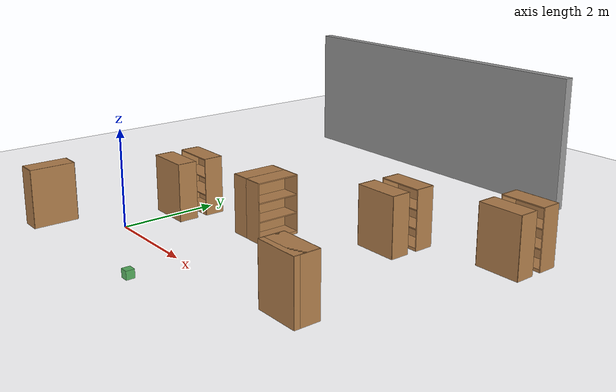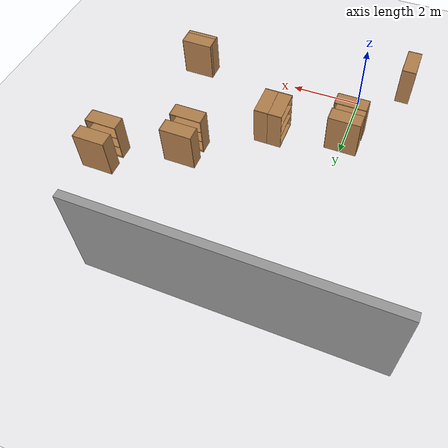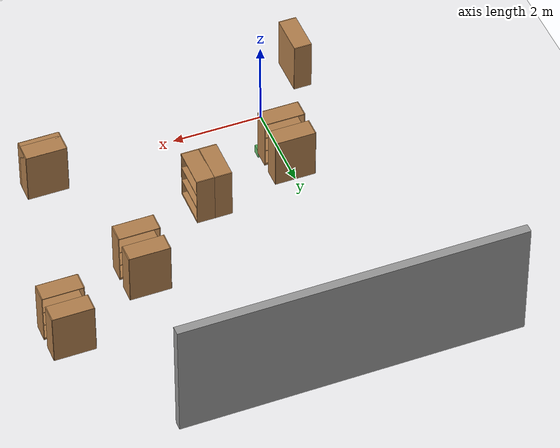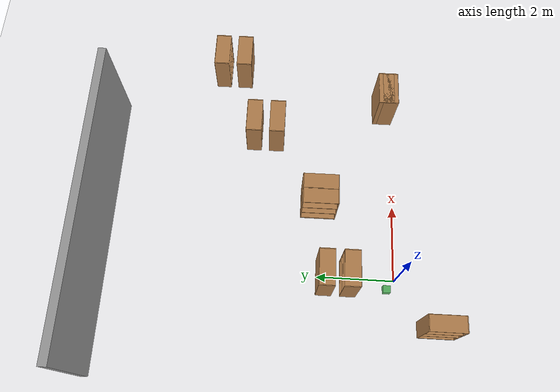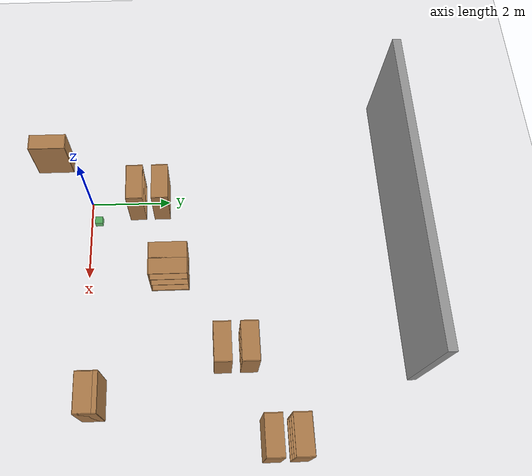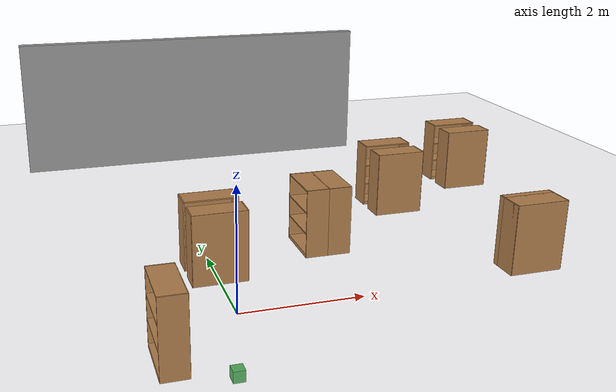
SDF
<sdf version="1.4">
 <world name="default">
  <include><uri>model://sun</uri></include>
  <include><uri>model://ground_plane</uri></include>
  <model name="rat_goal">
   <static>1</static>
   <link name="rat_goal_link">
    <visual name="visual">
     <geometry><box><size>0.2 0.2 0.2</size></box></geometry>
     <material>
      <script><uri>file://media/materials/scripts/gazebo.material</uri><name>Gazebo/Green</name></script>
     </material>
    </visual>
    <gravity>0</gravity>
   </link>
   <pose>0 0 -1 0 0 0</pose>
  </model>
  <model name="bookshelf_1">
   <static>1</static>
   <link name="link">
    <inertial><mass>1</mass></inertial>
    <collision name="back">
     <pose>0 0.005 0.6 0 -0 0</pose>
     <geometry><box><size>0.9 0.01 1.2</size></box></geometry>
    </collision>
    <visual name="visual1">
     <pose>0 0.005 0.6 0 -0 0</pose>
     <geometry><box><size>0.9 0.01 1.2</size></box></geometry>
     <material>
      <script><uri>file://media/materials/scripts/gazebo.material</uri><name>Gazebo/Wood</name></script>
     </material>
    </visual>
    <collision name="left_side">
     <pose>0.45 -0.195 0.6 0 -0 0</pose>
     <geometry><box><size>0.02 0.4 1.2</size></box></geometry>
    </collision>
    <visual name="visual2">
     <pose>0.45 -0.195 0.6 0 -0 0</pose>
     <geometry><box><size>0.02 0.4 1.2</size></box></geometry>
     <material>
      <script><uri>file://media/materials/scripts/gazebo.material</uri><name>Gazebo/Wood</name></script>
     </material>
    </visual>
    <collision name="right_side">
     <pose>-0.45 -0.195 0.6 0 -0 0</pose>
     <geometry><box><size>0.02 0.4 1.2</size></box></geometry>
    </collision>
    <visual name="visual3">
     <pose>-0.45 -0.195 0.6 0 -0 0</pose>
     <geometry><box><size>0.02 0.4 1.2</size></box></geometry>
     <material>
      <script><uri>file://media/materials/scripts/gazebo.material</uri><name>Gazebo/Wood</name></script>
     </material>
    </visual>
    <collision name="bottom">
     <pose>0 -0.195 0.03 0 -0 0</pose>
     <geometry><box><size>0.88 0.4 0.06</size></box></geometry>
    </collision>
    <visual name="visual4">
     <pose>0 -0.195 0.03 0 -0 0</pose>
     <geometry><box><size>0.88 0.4 0.06</size></box></geometry>
     <material>
      <script><uri>file://media/materials/scripts/gazebo.material</uri><name>Gazebo/Wood</name></script>
     </material>
    </visual>
    <collision name="top">
     <pose>0 -0.195 1.19 0 -0 0</pose>
     <geometry><box><size>0.88 0.4 0.02</size></box></geometry>
    </collision>
    <visual name="visual5">
     <pose>0 -0.195 1.19 0 -0 0</pose>
     <geometry><box><size>0.88 0.4 0.02</size></box></geometry>
     <material>
      <script><uri>file://media/materials/scripts/gazebo.material</uri><name>Gazebo/Wood</name></script>
     </material>
    </visual>
    <collision name="low_shelf">
     <pose>0 -0.195 0.43 0 -0 0</pose>
     <geometry><box><size>0.88 0.4 0.02</size></box></geometry>
    </collision>
    <visual name="visual6">
     <pose>0 -0.195 0.43 0 -0 0</pose>
     <geometry><box><size>0.88 0.4 0.02</size></box></geometry>
     <material>
      <script><uri>file://media/materials/scripts/gazebo.material</uri><name>Gazebo/Wood</name></script>
     </material>
    </visual>
    <collision name="high_shelf">
     <pose>0 -0.195 0.8 0 -0 0</pose>
     <geometry><box><size>0.88 0.4 0.02</size></box></geometry>
    </collision>
    <visual name="visual7">
     <pose>0 -0.195 0.8 0 -0 0</pose>
     <geometry><box><size>0.88 0.4 0.02</size></box></geometry>
     <material>
      <script><uri>file://media/materials/scripts/gazebo.material</uri><name>Gazebo/Wood</name></script>
     </material>
    </visual>
    <velocity_decay><linear>0</linear><angular>0</angular></velocity_decay>
   </link>
   <pose>0 2 0 0 -0 0</pose>
  </model>
  <model name="bookshelf_3">
   <static>1</static>
   <link name="link">
    <inertial><mass>1</mass></inertial>
    <collision name="back">
     <pose>0 0.005 0.6 0 -0 0</pose>
     <geometry><box><size>0.9 0.01 1.2</size></box></geometry>
    </collision>
    <visual name="visual1">
     <pose>0 0.005 0.6 0 -0 0</pose>
     <geometry><box><size>0.9 0.01 1.2</size></box></geometry>
     <material>
      <script><uri>file://media/materials/scripts/gazebo.material</uri><name>Gazebo/Wood</name></script>
     </material>
    </visual>
    <collision name="left_side">
     <pose>0.45 -0.195 0.6 0 -0 0</pose>
     <geometry><box><size>0.02 0.4 1.2</size></box></geometry>
    </collision>
    <visual name="visual2">
     <pose>0.45 -0.195 0.6 0 -0 0</pose>
     <geometry><box><size>0.02 0.4 1.2</size></box></geometry>
     <material>
      <script><uri>file://media/materials/scripts/gazebo.material</uri><name>Gazebo/Wood</name></script>
     </material>
    </visual>
    <collision name="right_side">
     <pose>-0.45 -0.195 0.6 0 -0 0</pose>
     <geometry><box><size>0.02 0.4 1.2</size></box></geometry>
    </collision>
    <visual name="visual3">
     <pose>-0.45 -0.195 0.6 0 -0 0</pose>
     <geometry><box><size>0.02 0.4 1.2</size></box></geometry>
     <material>
      <script><uri>file://media/materials/scripts/gazebo.material</uri><name>Gazebo/Wood</name></script>
     </material>
    </visual>
    <collision name="bottom">
     <pose>0 -0.195 0.03 0 -0 0</pose>
     <geometry><box><size>0.88 0.4 0.06</size></box></geometry>
    </collision>
    <visual name="visual4">
     <pose>0 -0.195 0.03 0 -0 0</pose>
     <geometry><box><size>0.88 0.4 0.06</size></box></geometry>
     <material>
      <script><uri>file://media/materials/scripts/gazebo.material</uri><name>Gazebo/Wood</name></script>
     </material>
    </visual>
    <collision name="top">
     <pose>0 -0.195 1.19 0 -0 0</pose>
     <geometry><box><size>0.88 0.4 0.02</size></box></geometry>
    </collision>
    <visual name="visual5">
     <pose>0 -0.195 1.19 0 -0 0</pose>
     <geometry><box><size>0.88 0.4 0.02</size></box></geometry>
     <material>
      <script><uri>file://media/materials/scripts/gazebo.material</uri><name>Gazebo/Wood</name></script>
     </material>
    </visual>
    <collision name="low_shelf">
     <pose>0 -0.195 0.43 0 -0 0</pose>
     <geometry><box><size>0.88 0.4 0.02</size></box></geometry>
    </collision>
    <visual name="visual6">
     <pose>0 -0.195 0.43 0 -0 0</pose>
     <geometry><box><size>0.88 0.4 0.02</size></box></geometry>
     <material>
      <script><uri>file://media/materials/scripts/gazebo.material</uri><name>Gazebo/Wood</name></script>
     </material>
    </visual>
    <collision name="high_shelf">
     <pose>0 -0.195 0.8 0 -0 0</pose>
     <geometry><box><size>0.88 0.4 0.02</size></box></geometry>
    </collision>
    <visual name="visual7">
     <pose>0 -0.195 0.8 0 -0 0</pose>
     <geometry><box><size>0.88 0.4 0.02</size></box></geometry>
     <material>
      <script><uri>file://media/materials/scripts/gazebo.material</uri><name>Gazebo/Wood</name></script>
     </material>
    </visual>
    <velocity_decay><linear>0</linear><angular>0</angular></velocity_decay>
   </link>
   <pose>0 1 0 0 0 -3.14159</pose>
  </model>
  <model name="grey_wall">
   <static>1</static>
   <link name="link">
    <pose>0 0 1.4 0 -0 0</pose>
    <collision name="collision"><geometry><box><size>7.5 0.2 2.8</size></box></geometry></collision>
    <visual name="visual">
     <cast_shadows>0</cast_shadows>
     <geometry><box><size>7.5 0.2 2.8</size></box></geometry>
     <material>
      <script>
       <uri>model://grey_wall/materials/scripts</uri>
       <uri>model://grey_wall/materials/textures</uri>
       <name>vrc/grey_wall</name>
      </script>
     </material>
    </visual>
    <velocity_decay><linear>0</linear><angular>0</angular></velocity_decay>
   </link>
   <pose>1 7.54791 0 0 -0 0</pose>
  </model>
  <model name="bookshelf_5">
   <static>1</static>
   <link name="link">
    <inertial><mass>1</mass></inertial>
    <collision name="back">
     <pose>0 0.005 0.6 0 -0 0</pose>
     <geometry><box><size>0.9 0.01 1.2</size></box></geometry>
    </collision>
    <visual name="visual1">
     <pose>0 0.005 0.6 0 -0 0</pose>
     <geometry><box><size>0.9 0.01 1.2</size></box></geometry>
     <material>
      <script><uri>file://media/materials/scripts/gazebo.material</uri><name>Gazebo/Wood</name></script>
     </material>
    </visual>
    <collision name="left_side">
     <pose>0.45 -0.195 0.6 0 -0 0</pose>
     <geometry><box><size>0.02 0.4 1.2</size></box></geometry>
    </collision>
    <visual name="visual2">
     <pose>0.45 -0.195 0.6 0 -0 0</pose>
     <geometry><box><size>0.02 0.4 1.2</size></box></geometry>
     <material>
      <script><uri>file://media/materials/scripts/gazebo.material</uri><name>Gazebo/Wood</name></script>
     </material>
    </visual>
    <collision name="right_side">
     <pose>-0.45 -0.195 0.6 0 -0 0</pose>
     <geometry><box><size>0.02 0.4 1.2</size></box></geometry>
    </collision>
    <visual name="visual3">
     <pose>-0.45 -0.195 0.6 0 -0 0</pose>
     <geometry><box><size>0.02 0.4 1.2</size></box></geometry>
     <material>
      <script><uri>file://media/materials/scripts/gazebo.material</uri><name>Gazebo/Wood</name></script>
     </material>
    </visual>
    <collision name="bottom">
     <pose>0 -0.195 0.03 0 -0 0</pose>
     <geometry><box><size>0.88 0.4 0.06</size></box></geometry>
    </collision>
    <visual name="visual4">
     <pose>0 -0.195 0.03 0 -0 0</pose>
     <geometry><box><size>0.88 0.4 0.06</size></box></geometry>
     <material>
      <script><uri>file://media/materials/scripts/gazebo.material</uri><name>Gazebo/Wood</name></script>
     </material>
    </visual>
    <collision name="top">
     <pose>0 -0.195 1.19 0 -0 0</pose>
     <geometry><box><size>0.88 0.4 0.02</size></box></geometry>
    </collision>
    <visual name="visual5">
     <pose>0 -0.195 1.19 0 -0 0</pose>
     <geometry><box><size>0.88 0.4 0.02</size></box></geometry>
     <material>
      <script><uri>file://media/materials/scripts/gazebo.material</uri><name>Gazebo/Wood</name></script>
     </material>
    </visual>
    <collision name="low_shelf">
     <pose>0 -0.195 0.43 0 -0 0</pose>
     <geometry><box><size>0.88 0.4 0.02</size></box></geometry>
    </collision>
    <visual name="visual6">
     <pose>0 -0.195 0.43 0 -0 0</pose>
     <geometry><box><size>0.88 0.4 0.02</size></box></geometry>
     <material>
      <script><uri>file://media/materials/scripts/gazebo.material</uri><name>Gazebo/Wood</name></script>
     </material>
    </visual>
    <collision name="high_shelf">
     <pose>0 -0.195 0.8 0 -0 0</pose>
     <geometry><box><size>0.88 0.4 0.02</size></box></geometry>
    </collision>
    <visual name="visual7">
     <pose>0 -0.195 0.8 0 -0 0</pose>
     <geometry><box><size>0.88 0.4 0.02</size></box></geometry>
     <material>
      <script><uri>file://media/materials/scripts/gazebo.material</uri><name>Gazebo/Wood</name></script>
     </material>
    </visual>
    <velocity_decay><linear>0</linear><angular>0</angular></velocity_decay>
   </link>
   <pose>6 5 0 0 -0 0</pose>
  </model>
  <model name="bookshelf_7">
   <static>1</static>
   <link name="link">
    <inertial><mass>1</mass></inertial>
    <collision name="back">
     <pose>0 0.005 0.6 0 -0 0</pose>
     <geometry><box><size>0.9 0.01 1.2</size></box></geometry>
    </collision>
    <visual name="visual1">
     <pose>0 0.005 0.6 0 -0 0</pose>
     <geometry><box><size>0.9 0.01 1.2</size></box></geometry>
     <material>
      <script><uri>file://media/materials/scripts/gazebo.material</uri><name>Gazebo/Wood</name></script>
     </material>
    </visual>
    <collision name="left_side">
     <pose>0.45 -0.195 0.6 0 -0 0</pose>
     <geometry><box><size>0.02 0.4 1.2</size></box></geometry>
    </collision>
    <visual name="visual2">
     <pose>0.45 -0.195 0.6 0 -0 0</pose>
     <geometry><box><size>0.02 0.4 1.2</size></box></geometry>
     <material>
      <script><uri>file://media/materials/scripts/gazebo.material</uri><name>Gazebo/Wood</name></script>
     </material>
    </visual>
    <collision name="right_side">
     <pose>-0.45 -0.195 0.6 0 -0 0</pose>
     <geometry><box><size>0.02 0.4 1.2</size></box></geometry>
    </collision>
    <visual name="visual3">
     <pose>-0.45 -0.195 0.6 0 -0 0</pose>
     <geometry><box><size>0.02 0.4 1.2</size></box></geometry>
     <material>
      <script><uri>file://media/materials/scripts/gazebo.material</uri><name>Gazebo/Wood</name></script>
     </material>
    </visual>
    <collision name="bottom">
     <pose>0 -0.195 0.03 0 -0 0</pose>
     <geometry><box><size>0.88 0.4 0.06</size></box></geometry>
    </collision>
    <visual name="visual4">
     <pose>0 -0.195 0.03 0 -0 0</pose>
     <geometry><box><size>0.88 0.4 0.06</size></box></geometry>
     <material>
      <script><uri>file://media/materials/scripts/gazebo.material</uri><name>Gazebo/Wood</name></script>
     </material>
    </visual>
    <collision name="top">
     <pose>0 -0.195 1.19 0 -0 0</pose>
     <geometry><box><size>0.88 0.4 0.02</size></box></geometry>
    </collision>
    <visual name="visual5">
     <pose>0 -0.195 1.19 0 -0 0</pose>
     <geometry><box><size>0.88 0.4 0.02</size></box></geometry>
     <material>
      <script><uri>file://media/materials/scripts/gazebo.material</uri><name>Gazebo/Wood</name></script>
     </material>
    </visual>
    <collision name="low_shelf">
     <pose>0 -0.195 0.43 0 -0 0</pose>
     <geometry><box><size>0.88 0.4 0.02</size></box></geometry>
    </collision>
    <visual name="visual6">
     <pose>0 -0.195 0.43 0 -0 0</pose>
     <geometry><box><size>0.88 0.4 0.02</size></box></geometry>
     <material>
      <script><uri>file://media/materials/scripts/gazebo.material</uri><name>Gazebo/Wood</name></script>
     </material>
    </visual>
    <collision name="high_shelf">
     <pose>0 -0.195 0.8 0 -0 0</pose>
     <geometry><box><size>0.88 0.4 0.02</size></box></geometry>
    </collision>
    <visual name="visual7">
     <pose>0 -0.195 0.8 0 -0 0</pose>
     <geometry><box><size>0.88 0.4 0.02</size></box></geometry>
     <material>
      <script><uri>file://media/materials/scripts/gazebo.material</uri><name>Gazebo/Wood</name></script>
     </material>
    </visual>
    <velocity_decay><linear>0</linear><angular>0</angular></velocity_decay>
   </link>
   <pose>6 4 0 0 0 -3.14159</pose>
  </model>
  <model name="bookshelf_11">
   <static>1</static>
   <link name="link">
    <inertial><mass>1</mass></inertial>
    <collision name="back">
     <pose>0 0.005 0.6 0 -0 0</pose>
     <geometry><box><size>0.9 0.01 1.2</size></box></geometry>
    </collision>
    <visual name="visual1">
     <pose>0 0.005 0.6 0 -0 0</pose>
     <geometry><box><size>0.9 0.01 1.2</size></box></geometry>
     <material>
      <script><uri>file://media/materials/scripts/gazebo.material</uri><name>Gazebo/Wood</name></script>
     </material>
    </visual>
    <collision name="left_side">
     <pose>0.45 -0.195 0.6 0 -0 0</pose>
     <geometry><box><size>0.02 0.4 1.2</size></box></geometry>
    </collision>
    <visual name="visual2">
     <pose>0.45 -0.195 0.6 0 -0 0</pose>
     <geometry><box><size>0.02 0.4 1.2</size></box></geometry>
     <material>
      <script><uri>file://media/materials/scripts/gazebo.material</uri><name>Gazebo/Wood</name></script>
     </material>
    </visual>
    <collision name="right_side">
     <pose>-0.45 -0.195 0.6 0 -0 0</pose>
     <geometry><box><size>0.02 0.4 1.2</size></box></geometry>
    </collision>
    <visual name="visual3">
     <pose>-0.45 -0.195 0.6 0 -0 0</pose>
     <geometry><box><size>0.02 0.4 1.2</size></box></geometry>
     <material>
      <script><uri>file://media/materials/scripts/gazebo.material</uri><name>Gazebo/Wood</name></script>
     </material>
    </visual>
    <collision name="bottom">
     <pose>0 -0.195 0.03 0 -0 0</pose>
     <geometry><box><size>0.88 0.4 0.06</size></box></geometry>
    </collision>
    <visual name="visual4">
     <pose>0 -0.195 0.03 0 -0 0</pose>
     <geometry><box><size>0.88 0.4 0.06</size></box></geometry>
     <material>
      <script><uri>file://media/materials/scripts/gazebo.material</uri><name>Gazebo/Wood</name></script>
     </material>
    </visual>
    <collision name="top">
     <pose>0 -0.195 1.19 0 -0 0</pose>
     <geometry><box><size>0.88 0.4 0.02</size></box></geometry>
    </collision>
    <visual name="visual5">
     <pose>0 -0.195 1.19 0 -0 0</pose>
     <geometry><box><size>0.88 0.4 0.02</size></box></geometry>
     <material>
      <script><uri>file://media/materials/scripts/gazebo.material</uri><name>Gazebo/Wood</name></script>
     </material>
    </visual>
    <collision name="low_shelf">
     <pose>0 -0.195 0.43 0 -0 0</pose>
     <geometry><box><size>0.88 0.4 0.02</size></box></geometry>
    </collision>
    <visual name="visual6">
     <pose>0 -0.195 0.43 0 -0 0</pose>
     <geometry><box><size>0.88 0.4 0.02</size></box></geometry>
     <material>
      <script><uri>file://media/materials/scripts/gazebo.material</uri><name>Gazebo/Wood</name></script>
     </material>
    </visual>
    <collision name="high_shelf">
     <pose>0 -0.195 0.8 0 -0 0</pose>
     <geometry><box><size>0.88 0.4 0.02</size></box></geometry>
    </collision>
    <visual name="visual7">
     <pose>0 -0.195 0.8 0 -0 0</pose>
     <geometry><box><size>0.88 0.4 0.02</size></box></geometry>
     <material>
      <script><uri>file://media/materials/scripts/gazebo.material</uri><name>Gazebo/Wood</name></script>
     </material>
    </visual>
    <velocity_decay><linear>0</linear><angular>0</angular></velocity_decay>
   </link>
   <pose>-1 -1 0 0 0 -1.5708</pose>
  </model>
  <model name="bookshelf_12">
   <static>1</static>
   <link name="link">
    <inertial><mass>1</mass></inertial>
    <collision name="back">
     <pose>0 0.005 0.6 0 -0 0</pose>
     <geometry><box><size>0.9 0.01 1.2</size></box></geometry>
    </collision>
    <visual name="visual1">
     <pose>0 0.005 0.6 0 -0 0</pose>
     <geometry><box><size>0.9 0.01 1.2</size></box></geometry>
     <material>
      <script><uri>file://media/materials/scripts/gazebo.material</uri><name>Gazebo/Wood</name></script>
     </material>
    </visual>
    <collision name="left_side">
     <pose>0.45 -0.195 0.6 0 -0 0</pose>
     <geometry><box><size>0.02 0.4 1.2</size></box></geometry>
    </collision>
    <visual name="visual2">
     <pose>0.45 -0.195 0.6 0 -0 0</pose>
     <geometry><box><size>0.02 0.4 1.2</size></box></geometry>
     <material>
      <script><uri>file://media/materials/scripts/gazebo.material</uri><name>Gazebo/Wood</name></script>
     </material>
    </visual>
    <collision name="right_side">
     <pose>-0.45 -0.195 0.6 0 -0 0</pose>
     <geometry><box><size>0.02 0.4 1.2</size></box></geometry>
    </collision>
    <visual name="visual3">
     <pose>-0.45 -0.195 0.6 0 -0 0</pose>
     <geometry><box><size>0.02 0.4 1.2</size></box></geometry>
     <material>
      <script><uri>file://media/materials/scripts/gazebo.material</uri><name>Gazebo/Wood</name></script>
     </material>
    </visual>
    <collision name="bottom">
     <pose>0 -0.195 0.03 0 -0 0</pose>
     <geometry><box><size>0.88 0.4 0.06</size></box></geometry>
    </collision>
    <visual name="visual4">
     <pose>0 -0.195 0.03 0 -0 0</pose>
     <geometry><box><size>0.88 0.4 0.06</size></box></geometry>
     <material>
      <script><uri>file://media/materials/scripts/gazebo.material</uri><name>Gazebo/Wood</name></script>
     </material>
    </visual>
    <collision name="top">
     <pose>0 -0.195 1.19 0 -0 0</pose>
     <geometry><box><size>0.88 0.4 0.02</size></box></geometry>
    </collision>
    <visual name="visual5">
     <pose>0 -0.195 1.19 0 -0 0</pose>
     <geometry><box><size>0.88 0.4 0.02</size></box></geometry>
     <material>
      <script><uri>file://media/materials/scripts/gazebo.material</uri><name>Gazebo/Wood</name></script>
     </material>
    </visual>
    <collision name="low_shelf">
     <pose>0 -0.195 0.43 0 -0 0</pose>
     <geometry><box><size>0.88 0.4 0.02</size></box></geometry>
    </collision>
    <visual name="visual6">
     <pose>0 -0.195 0.43 0 -0 0</pose>
     <geometry><box><size>0.88 0.4 0.02</size></box></geometry>
     <material>
      <script><uri>file://media/materials/scripts/gazebo.material</uri><name>Gazebo/Wood</name></script>
     </material>
    </visual>
    <collision name="high_shelf">
     <pose>0 -0.195 0.8 0 -0 0</pose>
     <geometry><box><size>0.88 0.4 0.02</size></box></geometry>
    </collision>
    <visual name="visual7">
     <pose>0 -0.195 0.8 0 -0 0</pose>
     <geometry><box><size>0.88 0.4 0.02</size></box></geometry>
     <material>
      <script><uri>file://media/materials/scripts/gazebo.material</uri><name>Gazebo/Wood</name></script>
     </material>
    </visual>
    <velocity_decay><linear>0</linear><angular>0</angular></velocity_decay>
   </link>
   <pose>4 4 0 0 -0 0</pose>
  </model>
  <model name="bookshelf_13">
   <static>1</static>
   <link name="link">
    <inertial><mass>1</mass></inertial>
    <collision name="back">
     <pose>0 0.005 0.6 0 -0 0</pose>
     <geometry><box><size>0.9 0.01 1.2</size></box></geometry>
    </collision>
    <visual name="visual1">
     <pose>0 0.005 0.6 0 -0 0</pose>
     <geometry><box><size>0.9 0.01 1.2</size></box></geometry>
     <material>
      <script><uri>file://media/materials/scripts/gazebo.material</uri><name>Gazebo/Wood</name></script>
     </material>
    </visual>
    <collision name="left_side">
     <pose>0.45 -0.195 0.6 0 -0 0</pose>
     <geometry><box><size>0.02 0.4 1.2</size></box></geometry>
    </collision>
    <visual name="visual2">
     <pose>0.45 -0.195 0.6 0 -0 0</pose>
     <geometry><box><size>0.02 0.4 1.2</size></box></geometry>
     <material>
      <script><uri>file://media/materials/scripts/gazebo.material</uri><name>Gazebo/Wood</name></script>
     </material>
    </visual>
    <collision name="right_side">
     <pose>-0.45 -0.195 0.6 0 -0 0</pose>
     <geometry><box><size>0.02 0.4 1.2</size></box></geometry>
    </collision>
    <visual name="visual3">
     <pose>-0.45 -0.195 0.6 0 -0 0</pose>
     <geometry><box><size>0.02 0.4 1.2</size></box></geometry>
     <material>
      <script><uri>file://media/materials/scripts/gazebo.material</uri><name>Gazebo/Wood</name></script>
     </material>
    </visual>
    <collision name="bottom">
     <pose>0 -0.195 0.03 0 -0 0</pose>
     <geometry><box><size>0.88 0.4 0.06</size></box></geometry>
    </collision>
    <visual name="visual4">
     <pose>0 -0.195 0.03 0 -0 0</pose>
     <geometry><box><size>0.88 0.4 0.06</size></box></geometry>
     <material>
      <script><uri>file://media/materials/scripts/gazebo.material</uri><name>Gazebo/Wood</name></script>
     </material>
    </visual>
    <collision name="top">
     <pose>0 -0.195 1.19 0 -0 0</pose>
     <geometry><box><size>0.88 0.4 0.02</size></box></geometry>
    </collision>
    <visual name="visual5">
     <pose>0 -0.195 1.19 0 -0 0</pose>
     <geometry><box><size>0.88 0.4 0.02</size></box></geometry>
     <material>
      <script><uri>file://media/materials/scripts/gazebo.material</uri><name>Gazebo/Wood</name></script>
     </material>
    </visual>
    <collision name="low_shelf">
     <pose>0 -0.195 0.43 0 -0 0</pose>
     <geometry><box><size>0.88 0.4 0.02</size></box></geometry>
    </collision>
    <visual name="visual6">
     <pose>0 -0.195 0.43 0 -0 0</pose>
     <geometry><box><size>0.88 0.4 0.02</size></box></geometry>
     <material>
      <script><uri>file://media/materials/scripts/gazebo.material</uri><name>Gazebo/Wood</name></script>
     </material>
    </visual>
    <collision name="high_shelf">
     <pose>0 -0.195 0.8 0 -0 0</pose>
     <geometry><box><size>0.88 0.4 0.02</size></box></geometry>
    </collision>
    <visual name="visual7">
     <pose>0 -0.195 0.8 0 -0 0</pose>
     <geometry><box><size>0.88 0.4 0.02</size></box></geometry>
     <material>
      <script><uri>file://media/materials/scripts/gazebo.material</uri><name>Gazebo/Wood</name></script>
     </material>
    </visual>
    <velocity_decay><linear>0</linear><angular>0</angular></velocity_decay>
   </link>
   <pose>4 3 0 0 -0 3.14159</pose>
  </model>
  <model name="bookshelf_14">
   <static>1</static>
   <link name="link">
    <inertial><mass>1</mass></inertial>
    <collision name="back">
     <pose>0 0.005 0.6 0 -0 0</pose>
     <geometry><box><size>0.9 0.01 1.2</size></box></geometry>
    </collision>
    <visual name="visual1">
     <pose>0 0.005 0.6 0 -0 0</pose>
     <geometry><box><size>0.9 0.01 1.2</size></box></geometry>
     <material>
      <script><uri>file://media/materials/scripts/gazebo.material</uri><name>Gazebo/Wood</name></script>
     </material>
    </visual>
    <collision name="left_side">
     <pose>0.45 -0.195 0.6 0 -0 0</pose>
     <geometry><box><size>0.02 0.4 1.2</size></box></geometry>
    </collision>
    <visual name="visual2">
     <pose>0.45 -0.195 0.6 0 -0 0</pose>
     <geometry><box><size>0.02 0.4 1.2</size></box></geometry>
     <material>
      <script><uri>file://media/materials/scripts/gazebo.material</uri><name>Gazebo/Wood</name></script>
     </material>
    </visual>
    <collision name="right_side">
     <pose>-0.45 -0.195 0.6 0 -0 0</pose>
     <geometry><box><size>0.02 0.4 1.2</size></box></geometry>
    </collision>
    <visual name="visual3">
     <pose>-0.45 -0.195 0.6 0 -0 0</pose>
     <geometry><box><size>0.02 0.4 1.2</size></box></geometry>
     <material>
      <script><uri>file://media/materials/scripts/gazebo.material</uri><name>Gazebo/Wood</name></script>
     </material>
    </visual>
    <collision name="bottom">
     <pose>0 -0.195 0.03 0 -0 0</pose>
     <geometry><box><size>0.88 0.4 0.06</size></box></geometry>
    </collision>
    <visual name="visual4">
     <pose>0 -0.195 0.03 0 -0 0</pose>
     <geometry><box><size>0.88 0.4 0.06</size></box></geometry>
     <material>
      <script><uri>file://media/materials/scripts/gazebo.material</uri><name>Gazebo/Wood</name></script>
     </material>
    </visual>
    <collision name="top">
     <pose>0 -0.195 1.19 0 -0 0</pose>
     <geometry><box><size>0.88 0.4 0.02</size></box></geometry>
    </collision>
    <visual name="visual5">
     <pose>0 -0.195 1.19 0 -0 0</pose>
     <geometry><box><size>0.88 0.4 0.02</size></box></geometry>
     <material>
      <script><uri>file://media/materials/scripts/gazebo.material</uri><name>Gazebo/Wood</name></script>
     </material>
    </visual>
    <collision name="low_shelf">
     <pose>0 -0.195 0.43 0 -0 0</pose>
     <geometry><box><size>0.88 0.4 0.02</size></box></geometry>
    </collision>
    <visual name="visual6">
     <pose>0 -0.195 0.43 0 -0 0</pose>
     <geometry><box><size>0.88 0.4 0.02</size></box></geometry>
     <material>
      <script><uri>file://media/materials/scripts/gazebo.material</uri><name>Gazebo/Wood</name></script>
     </material>
    </visual>
    <collision name="high_shelf">
     <pose>0 -0.195 0.8 0 -0 0</pose>
     <geometry><box><size>0.88 0.4 0.02</size></box></geometry>
    </collision>
    <visual name="visual7">
     <pose>0 -0.195 0.8 0 -0 0</pose>
     <geometry><box><size>0.88 0.4 0.02</size></box></geometry>
     <material>
      <script><uri>file://media/materials/scripts/gazebo.material</uri><name>Gazebo/Wood</name></script>
     </material>
    </visual>
    <velocity_decay><linear>0</linear><angular>0</angular></velocity_decay>
   </link>
   <pose>2 2 0 0 0 -1.5708</pose>
  </model>
  <model name="bookshelf_15">
   <static>1</static>
   <link name="link">
    <inertial><mass>1</mass></inertial>
    <collision name="back">
     <pose>0 0.005 0.6 0 -0 0</pose>
     <geometry><box><size>0.9 0.01 1.2</size></box></geometry>
    </collision>
    <visual name="visual1">
     <pose>0 0.005 0.6 0 -0 0</pose>
     <geometry><box><size>0.9 0.01 1.2</size></box></geometry>
     <material>
      <script><uri>file://media/materials/scripts/gazebo.material</uri><name>Gazebo/Wood</name></script>
     </material>
    </visual>
    <collision name="left_side">
     <pose>0.45 -0.195 0.6 0 -0 0</pose>
     <geometry><box><size>0.02 0.4 1.2</size></box></geometry>
    </collision>
    <visual name="visual2">
     <pose>0.45 -0.195 0.6 0 -0 0</pose>
     <geometry><box><size>0.02 0.4 1.2</size></box></geometry>
     <material>
      <script><uri>file://media/materials/scripts/gazebo.material</uri><name>Gazebo/Wood</name></script>
     </material>
    </visual>
    <collision name="right_side">
     <pose>-0.45 -0.195 0.6 0 -0 0</pose>
     <geometry><box><size>0.02 0.4 1.2</size></box></geometry>
    </collision>
    <visual name="visual3">
     <pose>-0.45 -0.195 0.6 0 -0 0</pose>
     <geometry><box><size>0.02 0.4 1.2</size></box></geometry>
     <material>
      <script><uri>file://media/materials/scripts/gazebo.material</uri><name>Gazebo/Wood</name></script>
     </material>
    </visual>
    <collision name="bottom">
     <pose>0 -0.195 0.03 0 -0 0</pose>
     <geometry><box><size>0.88 0.4 0.06</size></box></geometry>
    </collision>
    <visual name="visual4">
     <pose>0 -0.195 0.03 0 -0 0</pose>
     <geometry><box><size>0.88 0.4 0.06</size></box></geometry>
     <material>
      <script><uri>file://media/materials/scripts/gazebo.material</uri><name>Gazebo/Wood</name></script>
     </material>
    </visual>
    <collision name="top">
     <pose>0 -0.195 1.19 0 -0 0</pose>
     <geometry><box><size>0.88 0.4 0.02</size></box></geometry>
    </collision>
    <visual name="visual5">
     <pose>0 -0.195 1.19 0 -0 0</pose>
     <geometry><box><size>0.88 0.4 0.02</size></box></geometry>
     <material>
      <script><uri>file://media/materials/scripts/gazebo.material</uri><name>Gazebo/Wood</name></script>
     </material>
    </visual>
    <collision name="low_shelf">
     <pose>0 -0.195 0.43 0 -0 0</pose>
     <geometry><box><size>0.88 0.4 0.02</size></box></geometry>
    </collision>
    <visual name="visual6">
     <pose>0 -0.195 0.43 0 -0 0</pose>
     <geometry><box><size>0.88 0.4 0.02</size></box></geometry>
     <material>
      <script><uri>file://media/materials/scripts/gazebo.material</uri><name>Gazebo/Wood</name></script>
     </material>
    </visual>
    <collision name="high_shelf">
     <pose>0 -0.195 0.8 0 -0 0</pose>
     <geometry><box><size>0.88 0.4 0.02</size></box></geometry>
    </collision>
    <visual name="visual7">
     <pose>0 -0.195 0.8 0 -0 0</pose>
     <geometry><box><size>0.88 0.4 0.02</size></box></geometry>
     <material>
      <script><uri>file://media/materials/scripts/gazebo.material</uri><name>Gazebo/Wood</name></script>
     </material>
    </visual>
    <velocity_decay><linear>0</linear><angular>0</angular></velocity_decay>
   </link>
   <pose>2 2 0 0 -0 1.5708</pose>
  </model>
  <model name="bookshelf_16">
   <static>1</static>
   <link name="link">
    <inertial><mass>1</mass></inertial>
    <collision name="back">
     <pose>0 0.005 0.6 0 -0 0</pose>
     <geometry><box><size>0.9 0.01 1.2</size></box></geometry>
    </collision>
    <visual name="visual1">
     <pose>0 0.005 0.6 0 -0 0</pose>
     <geometry><box><size>0.9 0.01 1.2</size></box></geometry>
     <material>
      <script><uri>file://media/materials/scripts/gazebo.material</uri><name>Gazebo/Wood</name></script>
     </material>
    </visual>
    <collision name="left_side">
     <pose>0.45 -0.195 0.6 0 -0 0</pose>
     <geometry><box><size>0.02 0.4 1.2</size></box></geometry>
    </collision>
    <visual name="visual2">
     <pose>0.45 -0.195 0.6 0 -0 0</pose>
     <geometry><box><size>0.02 0.4 1.2</size></box></geometry>
     <material>
      <script><uri>file://media/materials/scripts/gazebo.material</uri><name>Gazebo/Wood</name></script>
     </material>
    </visual>
    <collision name="right_side">
     <pose>-0.45 -0.195 0.6 0 -0 0</pose>
     <geometry><box><size>0.02 0.4 1.2</size></box></geometry>
    </collision>
    <visual name="visual3">
     <pose>-0.45 -0.195 0.6 0 -0 0</pose>
     <geometry><box><size>0.02 0.4 1.2</size></box></geometry>
     <material>
      <script><uri>file://media/materials/scripts/gazebo.material</uri><name>Gazebo/Wood</name></script>
     </material>
    </visual>
    <collision name="bottom">
     <pose>0 -0.195 0.03 0 -0 0</pose>
     <geometry><box><size>0.88 0.4 0.06</size></box></geometry>
    </collision>
    <visual name="visual4">
     <pose>0 -0.195 0.03 0 -0 0</pose>
     <geometry><box><size>0.88 0.4 0.06</size></box></geometry>
     <material>
      <script><uri>file://media/materials/scripts/gazebo.material</uri><name>Gazebo/Wood</name></script>
     </material>
    </visual>
    <collision name="top">
     <pose>0 -0.195 1.19 0 -0 0</pose>
     <geometry><box><size>0.88 0.4 0.02</size></box></geometry>
    </collision>
    <visual name="visual5">
     <pose>0 -0.195 1.19 0 -0 0</pose>
     <geometry><box><size>0.88 0.4 0.02</size></box></geometry>
     <material>
      <script><uri>file://media/materials/scripts/gazebo.material</uri><name>Gazebo/Wood</name></script>
     </material>
    </visual>
    <collision name="low_shelf">
     <pose>0 -0.195 0.43 0 -0 0</pose>
     <geometry><box><size>0.88 0.4 0.02</size></box></geometry>
    </collision>
    <visual name="visual6">
     <pose>0 -0.195 0.43 0 -0 0</pose>
     <geometry><box><size>0.88 0.4 0.02</size></box></geometry>
     <material>
      <script><uri>file://media/materials/scripts/gazebo.material</uri><name>Gazebo/Wood</name></script>
     </material>
    </visual>
    <collision name="high_shelf">
     <pose>0 -0.195 0.8 0 -0 0</pose>
     <geometry><box><size>0.88 0.4 0.02</size></box></geometry>
    </collision>
    <visual name="visual7">
     <pose>0 -0.195 0.8 0 -0 0</pose>
     <geometry><box><size>0.88 0.4 0.02</size></box></geometry>
     <material>
      <script><uri>file://media/materials/scripts/gazebo.material</uri><name>Gazebo/Wood</name></script>
     </material>
    </visual>
    <velocity_decay><linear>0</linear><angular>0</angular></velocity_decay>
   </link>
   <pose>5 0.5 0 0 -0 0</pose>
  </model>
  <model name="bookshelf_17">
   <static>1</static>
   <link name="link">
    <inertial><mass>1</mass></inertial>
    <collision name="back">
     <pose>0 0.005 0.6 0 -0 0</pose>
     <geometry><box><size>0.9 0.01 1.2</size></box></geometry>
    </collision>
    <visual name="visual1">
     <pose>0 0.005 0.6 0 -0 0</pose>
     <geometry><box><size>0.9 0.01 1.2</size></box></geometry>
     <material>
      <script><uri>file://media/materials/scripts/gazebo.material</uri><name>Gazebo/Wood</name></script>
     </material>
    </visual>
    <collision name="left_side">
     <pose>0.45 -0.195 0.6 0 -0 0</pose>
     <geometry><box><size>0.02 0.4 1.2</size></box></geometry>
    </collision>
    <visual name="visual2">
     <pose>0.45 -0.195 0.6 0 -0 0</pose>
     <geometry><box><size>0.02 0.4 1.2</size></box></geometry>
     <material>
      <script><uri>file://media/materials/scripts/gazebo.material</uri><name>Gazebo/Wood</name></script>
     </material>
    </visual>
    <collision name="right_side">
     <pose>-0.45 -0.195 0.6 0 -0 0</pose>
     <geometry><box><size>0.02 0.4 1.2</size></box></geometry>
    </collision>
    <visual name="visual3">
     <pose>-0.45 -0.195 0.6 0 -0 0</pose>
     <geometry><box><size>0.02 0.4 1.2</size></box></geometry>
     <material>
      <script><uri>file://media/materials/scripts/gazebo.material</uri><name>Gazebo/Wood</name></script>
     </material>
    </visual>
    <collision name="bottom">
     <pose>0 -0.195 0.03 0 -0 0</pose>
     <geometry><box><size>0.88 0.4 0.06</size></box></geometry>
    </collision>
    <visual name="visual4">
     <pose>0 -0.195 0.03 0 -0 0</pose>
     <geometry><box><size>0.88 0.4 0.06</size></box></geometry>
     <material>
      <script><uri>file://media/materials/scripts/gazebo.material</uri><name>Gazebo/Wood</name></script>
     </material>
    </visual>
    <collision name="top">
     <pose>0 -0.195 1.19 0 -0 0</pose>
     <geometry><box><size>0.88 0.4 0.02</size></box></geometry>
    </collision>
    <visual name="visual5">
     <pose>0 -0.195 1.19 0 -0 0</pose>
     <geometry><box><size>0.88 0.4 0.02</size></box></geometry>
     <material>
      <script><uri>file://media/materials/scripts/gazebo.material</uri><name>Gazebo/Wood</name></script>
     </material>
    </visual>
    <collision name="low_shelf">
     <pose>0 -0.195 0.43 0 -0 0</pose>
     <geometry><box><size>0.88 0.4 0.02</size></box></geometry>
    </collision>
    <visual name="visual6">
     <pose>0 -0.195 0.43 0 -0 0</pose>
     <geometry><box><size>0.88 0.4 0.02</size></box></geometry>
     <material>
      <script><uri>file://media/materials/scripts/gazebo.material</uri><name>Gazebo/Wood</name></script>
     </material>
    </visual>
    <collision name="high_shelf">
     <pose>0 -0.195 0.8 0 -0 0</pose>
     <geometry><box><size>0.88 0.4 0.02</size></box></geometry>
    </collision>
    <visual name="visual7">
     <pose>0 -0.195 0.8 0 -0 0</pose>
     <geometry><box><size>0.88 0.4 0.02</size></box></geometry>
     <material>
      <script><uri>file://media/materials/scripts/gazebo.material</uri><name>Gazebo/Wood</name></script>
     </material>
    </visual>
    <velocity_decay><linear>0</linear><angular>0</angular></velocity_decay>
   </link>
   <pose>5 0 0 0 0 -3.14159</pose>
  </model>
 </world>
</sdf>
